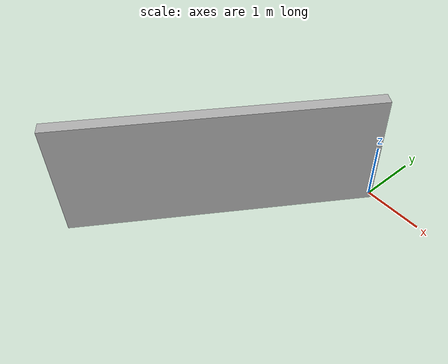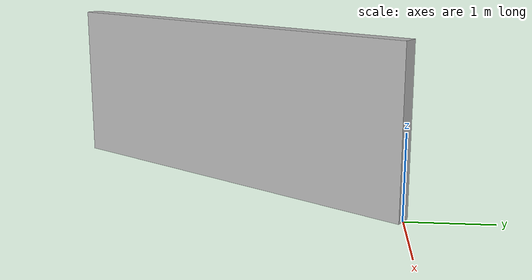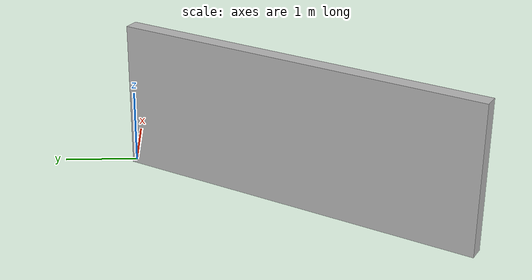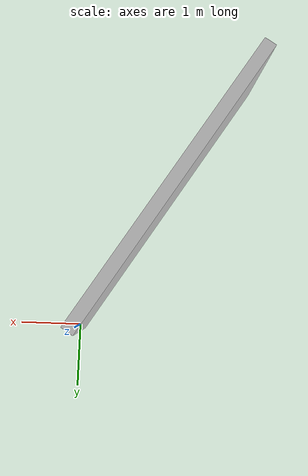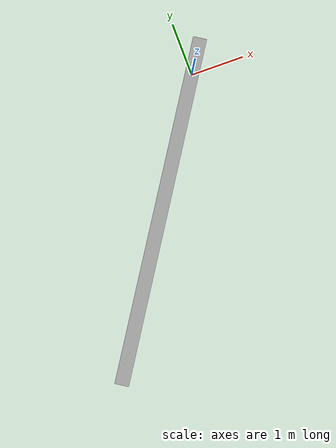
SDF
<?xml version="1.0" encoding="UTF-8"?>

<sdf version='1.6'>
  <world name='default'>

    <model name='wall'>
      <static>1</static>
      <pose frame=''>0 0 1 0 0 1</pose>
      <link name='wall'>
        <collision name='repeated_name'>
          <pose frame=''>-2.5 0 0 0 0 0</pose>
          <geometry>
            <box>
              <size>5 0.2 2</size>
            </box>
          </geometry>
        </collision>
         <collision name='collision_1'>
          <pose frame=''>-2.5 0 0 0 0 0</pose>
          <geometry>
            <box>
              <size>5 0.2 2</size>
            </box>
          </geometry>
        </collision>
         <collision name='collision_2'>
          <pose frame=''>-2.5 0 0 0 0 0</pose>
          <geometry>
            <box>
              <size>5 0.2 2</size>
            </box>
          </geometry>
        </collision>
        <visual name='repeated_name'>
          <pose frame=''>-2.5 0 0 0 0 0</pose>
          <geometry>
            <box>
              <size>5 0.2 2</size>
            </box>
          </geometry>
        </visual>
      </link>
    </model>

  </world>
</sdf>
